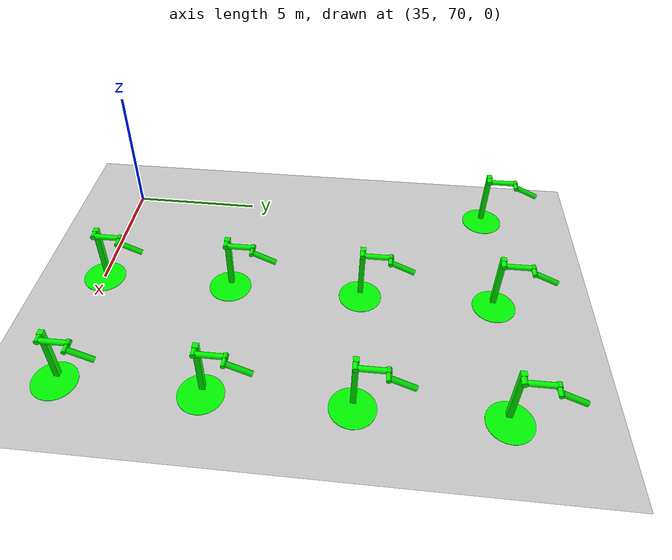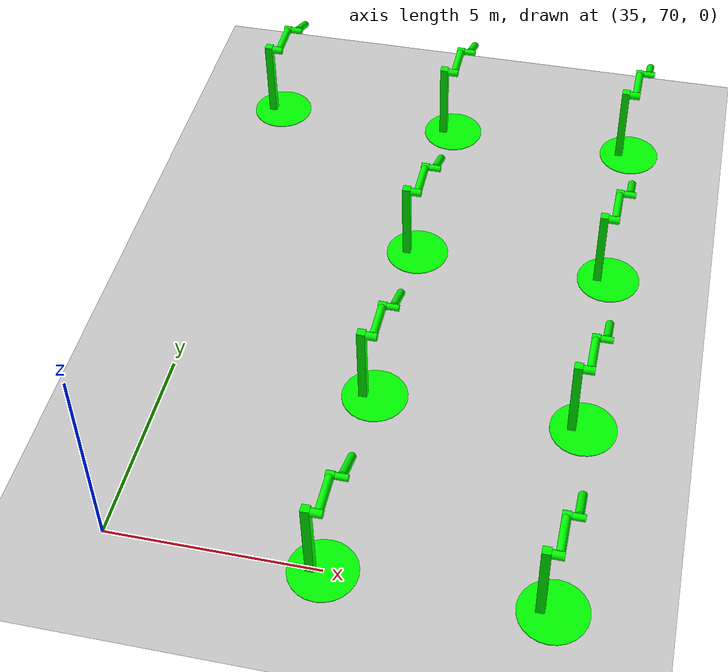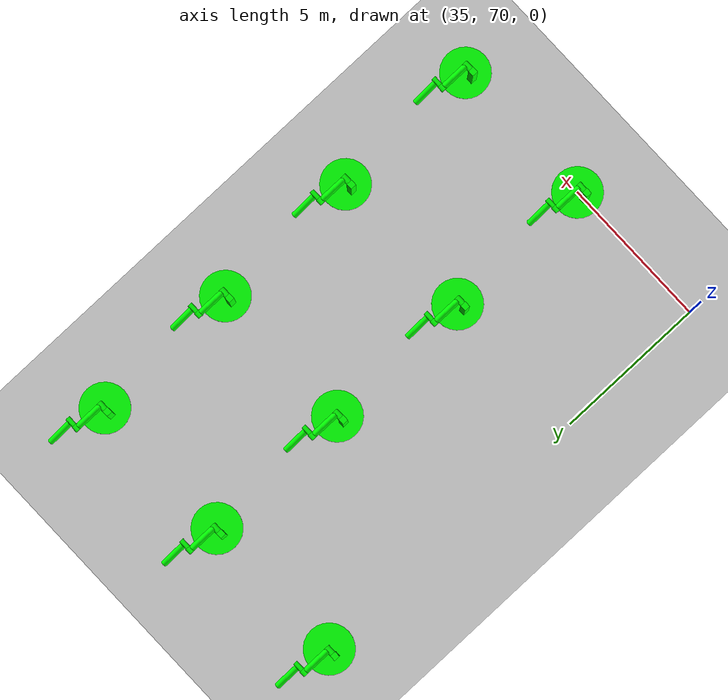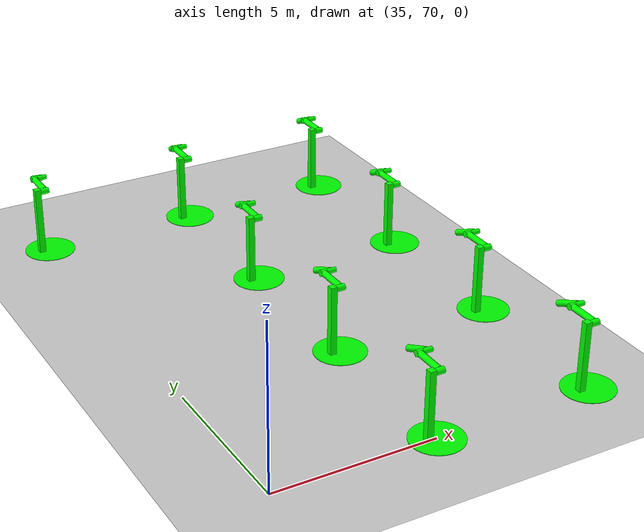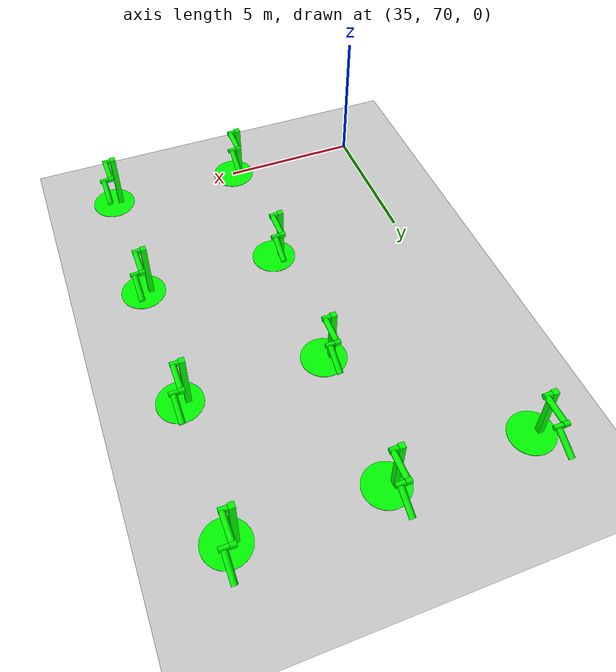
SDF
<sdf version="1.6">
 <world name="double_pendulums">
  <model name="ground_plane">
   <static>true</static>
   <link name="link">
    <collision name="collision">
     <geometry><plane><normal>0 0 1</normal><size>100 100</size></plane></geometry>
    </collision>
    <visual name="visual">
     <geometry><plane><normal>0 0 1</normal><size>100 100</size></plane></geometry>
     <material>
      <ambient>0.8 0.8 0.8 1</ambient>
      <diffuse>0.8 0.8 0.8 1</diffuse>
      <specular>0.8 0.8 0.8 1</specular>
     </material>
    </visual>
   </link>
  </model>
  <model name="dbl_pendulum_368">
   <pose>40 70 0 0 0 0</pose>
   <link name="base">
    <inertial><mass>100</mass></inertial>
    <visual name="vis_plate_on_ground">
     <pose>0 0 0.01 0 0 0</pose>
     <geometry><cylinder><radius>0.8</radius><length>0.02</length></cylinder></geometry>
     <material><ambient>0 1 0 1</ambient><diffuse>0 1 0 1</diffuse><specular>0 1 0 1</specular></material>
    </visual>
    <visual name="vis_pole">
     <pose>-0.275 0 1.1 0 0 0</pose>
     <geometry><box><size>0.2 0.2 2.2</size></box></geometry>
     <material><ambient>0 1 0 1</ambient><diffuse>0 1 0 1</diffuse><specular>0 1 0 1</specular></material>
    </visual>
    <collision name="col_plate_on_ground">
     <pose>0 0 0.01 0 0 0</pose>
     <geometry><cylinder><radius>0.8</radius><length>0.02</length></cylinder></geometry>
    </collision>
    <collision name="col_pole">
     <pose>-0.275 0 1.1 0 0 0</pose>
     <geometry><box><size>0.2 0.2 2.2</size></box></geometry>
    </collision>
   </link>
   <link name="upper_link">
    <pose>0 0 2.1 -1.5708 0 0</pose>
    <inertial><pose>0 0 0.5 0 0 0</pose></inertial>
    <visual name="vis_upper_joint">
     <pose>-0.05 0 0 0 1.5708 0</pose>
     <geometry><cylinder><radius>0.1</radius><length>0.3</length></cylinder></geometry>
     <material><ambient>0 1 0 1</ambient><diffuse>0 1 0 1</diffuse><specular>0 1 0 1</specular></material>
    </visual>
    <visual name="vis_lower_joint">
     <pose>0 0 1.0 0 1.5708 0</pose>
     <geometry><cylinder><radius>0.1</radius><length>0.2</length></cylinder></geometry>
     <material><ambient>0 1 0 1</ambient><diffuse>0 1 0 1</diffuse><specular>0 1 0 1</specular></material>
    </visual>
    <visual name="vis_cylinder">
     <pose>0 0 0.5 0 0 0</pose>
     <geometry><cylinder><radius>0.1</radius><length>0.9</length></cylinder></geometry>
     <material><ambient>0 1 0 1</ambient><diffuse>0 1 0 1</diffuse><specular>0 1 0 1</specular></material>
    </visual>
    <collision name="col_upper_joint">
     <pose>-0.05 0 0 0 1.5708 0</pose>
     <geometry><cylinder><radius>0.1</radius><length>0.3</length></cylinder></geometry>
    </collision>
    <collision name="col_lower_joint">
     <pose>0 0 1.0 0 1.5708 0</pose>
     <geometry><cylinder><radius>0.1</radius><length>0.2</length></cylinder></geometry>
    </collision>
    <collision name="col_cylinder">
     <pose>0 0 0.5 0 0 0</pose>
     <geometry><cylinder><radius>0.1</radius><length>0.9</length></cylinder></geometry>
    </collision>
   </link>
   <link name="lower_link">
    <pose>0.25 1.0 2.1 -2 0 0</pose>
    <inertial><pose>0 0 0.5 0 0 0</pose></inertial>
    <visual name="vis_lower_joint">
     <pose>0 0 0 0 1.5708 0</pose>
     <geometry><cylinder><radius>0.08</radius><length>0.3</length></cylinder></geometry>
     <material><ambient>0 1 0 1</ambient><diffuse>0 1 0 1</diffuse><specular>0 1 0 1</specular></material>
    </visual>
    <visual name="vis_cylinder">
     <pose>0 0 0.5 0 0 0</pose>
     <geometry><cylinder><radius>0.1</radius><length>0.9</length></cylinder></geometry>
     <material><ambient>0 1 0 1</ambient><diffuse>0 1 0 1</diffuse><specular>0 1 0 1</specular></material>
    </visual>
    <collision name="col_lower_joint">
     <pose>0 0 0 0 1.5708 0</pose>
     <geometry><cylinder><radius>0.08</radius><length>0.3</length></cylinder></geometry>
    </collision>
    <collision name="col_cylinder">
     <pose>0 0 0.5 0 0 0</pose>
     <geometry><cylinder><radius>0.1</radius><length>0.9</length></cylinder></geometry>
    </collision>
   </link>
   <joint name="upper_joint" type="revolute">
    <parent>base</parent>
    <child>upper_link</child>
    <axis><xyz>1.0 0 0</xyz></axis>
   </joint>
   <joint name="lower_joint" type="revolute">
    <parent>upper_link</parent>
    <child>lower_link</child>
    <axis><xyz>1.0 0 0</xyz></axis>
   </joint>
  </model>
  <model name="dbl_pendulum_369">
   <pose>45 70 0 0 0 0</pose>
   <link name="base">
    <inertial><mass>100</mass></inertial>
    <visual name="vis_plate_on_ground">
     <pose>0 0 0.01 0 0 0</pose>
     <geometry><cylinder><radius>0.8</radius><length>0.02</length></cylinder></geometry>
     <material><ambient>0 1 0 1</ambient><diffuse>0 1 0 1</diffuse><specular>0 1 0 1</specular></material>
    </visual>
    <visual name="vis_pole">
     <pose>-0.275 0 1.1 0 0 0</pose>
     <geometry><box><size>0.2 0.2 2.2</size></box></geometry>
     <material><ambient>0 1 0 1</ambient><diffuse>0 1 0 1</diffuse><specular>0 1 0 1</specular></material>
    </visual>
    <collision name="col_plate_on_ground">
     <pose>0 0 0.01 0 0 0</pose>
     <geometry><cylinder><radius>0.8</radius><length>0.02</length></cylinder></geometry>
    </collision>
    <collision name="col_pole">
     <pose>-0.275 0 1.1 0 0 0</pose>
     <geometry><box><size>0.2 0.2 2.2</size></box></geometry>
    </collision>
   </link>
   <link name="upper_link">
    <pose>0 0 2.1 -1.5708 0 0</pose>
    <inertial><pose>0 0 0.5 0 0 0</pose></inertial>
    <visual name="vis_upper_joint">
     <pose>-0.05 0 0 0 1.5708 0</pose>
     <geometry><cylinder><radius>0.1</radius><length>0.3</length></cylinder></geometry>
     <material><ambient>0 1 0 1</ambient><diffuse>0 1 0 1</diffuse><specular>0 1 0 1</specular></material>
    </visual>
    <visual name="vis_lower_joint">
     <pose>0 0 1.0 0 1.5708 0</pose>
     <geometry><cylinder><radius>0.1</radius><length>0.2</length></cylinder></geometry>
     <material><ambient>0 1 0 1</ambient><diffuse>0 1 0 1</diffuse><specular>0 1 0 1</specular></material>
    </visual>
    <visual name="vis_cylinder">
     <pose>0 0 0.5 0 0 0</pose>
     <geometry><cylinder><radius>0.1</radius><length>0.9</length></cylinder></geometry>
     <material><ambient>0 1 0 1</ambient><diffuse>0 1 0 1</diffuse><specular>0 1 0 1</specular></material>
    </visual>
    <collision name="col_upper_joint">
     <pose>-0.05 0 0 0 1.5708 0</pose>
     <geometry><cylinder><radius>0.1</radius><length>0.3</length></cylinder></geometry>
    </collision>
    <collision name="col_lower_joint">
     <pose>0 0 1.0 0 1.5708 0</pose>
     <geometry><cylinder><radius>0.1</radius><length>0.2</length></cylinder></geometry>
    </collision>
    <collision name="col_cylinder">
     <pose>0 0 0.5 0 0 0</pose>
     <geometry><cylinder><radius>0.1</radius><length>0.9</length></cylinder></geometry>
    </collision>
   </link>
   <link name="lower_link">
    <pose>0.25 1.0 2.1 -2 0 0</pose>
    <inertial><pose>0 0 0.5 0 0 0</pose></inertial>
    <visual name="vis_lower_joint">
     <pose>0 0 0 0 1.5708 0</pose>
     <geometry><cylinder><radius>0.08</radius><length>0.3</length></cylinder></geometry>
     <material><ambient>0 1 0 1</ambient><diffuse>0 1 0 1</diffuse><specular>0 1 0 1</specular></material>
    </visual>
    <visual name="vis_cylinder">
     <pose>0 0 0.5 0 0 0</pose>
     <geometry><cylinder><radius>0.1</radius><length>0.9</length></cylinder></geometry>
     <material><ambient>0 1 0 1</ambient><diffuse>0 1 0 1</diffuse><specular>0 1 0 1</specular></material>
    </visual>
    <collision name="col_lower_joint">
     <pose>0 0 0 0 1.5708 0</pose>
     <geometry><cylinder><radius>0.08</radius><length>0.3</length></cylinder></geometry>
    </collision>
    <collision name="col_cylinder">
     <pose>0 0 0.5 0 0 0</pose>
     <geometry><cylinder><radius>0.1</radius><length>0.9</length></cylinder></geometry>
    </collision>
   </link>
   <joint name="upper_joint" type="revolute">
    <parent>base</parent>
    <child>upper_link</child>
    <axis><xyz>1.0 0 0</xyz></axis>
   </joint>
   <joint name="lower_joint" type="revolute">
    <parent>upper_link</parent>
    <child>lower_link</child>
    <axis><xyz>1.0 0 0</xyz></axis>
   </joint>
  </model>
  <model name="dbl_pendulum_393">
   <pose>40 75 0 0 0 0</pose>
   <link name="base">
    <inertial><mass>100</mass></inertial>
    <visual name="vis_plate_on_ground">
     <pose>0 0 0.01 0 0 0</pose>
     <geometry><cylinder><radius>0.8</radius><length>0.02</length></cylinder></geometry>
     <material><ambient>0 1 0 1</ambient><diffuse>0 1 0 1</diffuse><specular>0 1 0 1</specular></material>
    </visual>
    <visual name="vis_pole">
     <pose>-0.275 0 1.1 0 0 0</pose>
     <geometry><box><size>0.2 0.2 2.2</size></box></geometry>
     <material><ambient>0 1 0 1</ambient><diffuse>0 1 0 1</diffuse><specular>0 1 0 1</specular></material>
    </visual>
    <collision name="col_plate_on_ground">
     <pose>0 0 0.01 0 0 0</pose>
     <geometry><cylinder><radius>0.8</radius><length>0.02</length></cylinder></geometry>
    </collision>
    <collision name="col_pole">
     <pose>-0.275 0 1.1 0 0 0</pose>
     <geometry><box><size>0.2 0.2 2.2</size></box></geometry>
    </collision>
   </link>
   <link name="upper_link">
    <pose>0 0 2.1 -1.5708 0 0</pose>
    <inertial><pose>0 0 0.5 0 0 0</pose></inertial>
    <visual name="vis_upper_joint">
     <pose>-0.05 0 0 0 1.5708 0</pose>
     <geometry><cylinder><radius>0.1</radius><length>0.3</length></cylinder></geometry>
     <material><ambient>0 1 0 1</ambient><diffuse>0 1 0 1</diffuse><specular>0 1 0 1</specular></material>
    </visual>
    <visual name="vis_lower_joint">
     <pose>0 0 1.0 0 1.5708 0</pose>
     <geometry><cylinder><radius>0.1</radius><length>0.2</length></cylinder></geometry>
     <material><ambient>0 1 0 1</ambient><diffuse>0 1 0 1</diffuse><specular>0 1 0 1</specular></material>
    </visual>
    <visual name="vis_cylinder">
     <pose>0 0 0.5 0 0 0</pose>
     <geometry><cylinder><radius>0.1</radius><length>0.9</length></cylinder></geometry>
     <material><ambient>0 1 0 1</ambient><diffuse>0 1 0 1</diffuse><specular>0 1 0 1</specular></material>
    </visual>
    <collision name="col_upper_joint">
     <pose>-0.05 0 0 0 1.5708 0</pose>
     <geometry><cylinder><radius>0.1</radius><length>0.3</length></cylinder></geometry>
    </collision>
    <collision name="col_lower_joint">
     <pose>0 0 1.0 0 1.5708 0</pose>
     <geometry><cylinder><radius>0.1</radius><length>0.2</length></cylinder></geometry>
    </collision>
    <collision name="col_cylinder">
     <pose>0 0 0.5 0 0 0</pose>
     <geometry><cylinder><radius>0.1</radius><length>0.9</length></cylinder></geometry>
    </collision>
   </link>
   <link name="lower_link">
    <pose>0.25 1.0 2.1 -2 0 0</pose>
    <inertial><pose>0 0 0.5 0 0 0</pose></inertial>
    <visual name="vis_lower_joint">
     <pose>0 0 0 0 1.5708 0</pose>
     <geometry><cylinder><radius>0.08</radius><length>0.3</length></cylinder></geometry>
     <material><ambient>0 1 0 1</ambient><diffuse>0 1 0 1</diffuse><specular>0 1 0 1</specular></material>
    </visual>
    <visual name="vis_cylinder">
     <pose>0 0 0.5 0 0 0</pose>
     <geometry><cylinder><radius>0.1</radius><length>0.9</length></cylinder></geometry>
     <material><ambient>0 1 0 1</ambient><diffuse>0 1 0 1</diffuse><specular>0 1 0 1</specular></material>
    </visual>
    <collision name="col_lower_joint">
     <pose>0 0 0 0 1.5708 0</pose>
     <geometry><cylinder><radius>0.08</radius><length>0.3</length></cylinder></geometry>
    </collision>
    <collision name="col_cylinder">
     <pose>0 0 0.5 0 0 0</pose>
     <geometry><cylinder><radius>0.1</radius><length>0.9</length></cylinder></geometry>
    </collision>
   </link>
   <joint name="upper_joint" type="revolute">
    <parent>base</parent>
    <child>upper_link</child>
    <axis><xyz>1.0 0 0</xyz></axis>
   </joint>
   <joint name="lower_joint" type="revolute">
    <parent>upper_link</parent>
    <child>lower_link</child>
    <axis><xyz>1.0 0 0</xyz></axis>
   </joint>
  </model>
  <model name="dbl_pendulum_394">
   <pose>45 75 0 0 0 0</pose>
   <link name="base">
    <inertial><mass>100</mass></inertial>
    <visual name="vis_plate_on_ground">
     <pose>0 0 0.01 0 0 0</pose>
     <geometry><cylinder><radius>0.8</radius><length>0.02</length></cylinder></geometry>
     <material><ambient>0 1 0 1</ambient><diffuse>0 1 0 1</diffuse><specular>0 1 0 1</specular></material>
    </visual>
    <visual name="vis_pole">
     <pose>-0.275 0 1.1 0 0 0</pose>
     <geometry><box><size>0.2 0.2 2.2</size></box></geometry>
     <material><ambient>0 1 0 1</ambient><diffuse>0 1 0 1</diffuse><specular>0 1 0 1</specular></material>
    </visual>
    <collision name="col_plate_on_ground">
     <pose>0 0 0.01 0 0 0</pose>
     <geometry><cylinder><radius>0.8</radius><length>0.02</length></cylinder></geometry>
    </collision>
    <collision name="col_pole">
     <pose>-0.275 0 1.1 0 0 0</pose>
     <geometry><box><size>0.2 0.2 2.2</size></box></geometry>
    </collision>
   </link>
   <link name="upper_link">
    <pose>0 0 2.1 -1.5708 0 0</pose>
    <inertial><pose>0 0 0.5 0 0 0</pose></inertial>
    <visual name="vis_upper_joint">
     <pose>-0.05 0 0 0 1.5708 0</pose>
     <geometry><cylinder><radius>0.1</radius><length>0.3</length></cylinder></geometry>
     <material><ambient>0 1 0 1</ambient><diffuse>0 1 0 1</diffuse><specular>0 1 0 1</specular></material>
    </visual>
    <visual name="vis_lower_joint">
     <pose>0 0 1.0 0 1.5708 0</pose>
     <geometry><cylinder><radius>0.1</radius><length>0.2</length></cylinder></geometry>
     <material><ambient>0 1 0 1</ambient><diffuse>0 1 0 1</diffuse><specular>0 1 0 1</specular></material>
    </visual>
    <visual name="vis_cylinder">
     <pose>0 0 0.5 0 0 0</pose>
     <geometry><cylinder><radius>0.1</radius><length>0.9</length></cylinder></geometry>
     <material><ambient>0 1 0 1</ambient><diffuse>0 1 0 1</diffuse><specular>0 1 0 1</specular></material>
    </visual>
    <collision name="col_upper_joint">
     <pose>-0.05 0 0 0 1.5708 0</pose>
     <geometry><cylinder><radius>0.1</radius><length>0.3</length></cylinder></geometry>
    </collision>
    <collision name="col_lower_joint">
     <pose>0 0 1.0 0 1.5708 0</pose>
     <geometry><cylinder><radius>0.1</radius><length>0.2</length></cylinder></geometry>
    </collision>
    <collision name="col_cylinder">
     <pose>0 0 0.5 0 0 0</pose>
     <geometry><cylinder><radius>0.1</radius><length>0.9</length></cylinder></geometry>
    </collision>
   </link>
   <link name="lower_link">
    <pose>0.25 1.0 2.1 -2 0 0</pose>
    <inertial><pose>0 0 0.5 0 0 0</pose></inertial>
    <visual name="vis_lower_joint">
     <pose>0 0 0 0 1.5708 0</pose>
     <geometry><cylinder><radius>0.08</radius><length>0.3</length></cylinder></geometry>
     <material><ambient>0 1 0 1</ambient><diffuse>0 1 0 1</diffuse><specular>0 1 0 1</specular></material>
    </visual>
    <visual name="vis_cylinder">
     <pose>0 0 0.5 0 0 0</pose>
     <geometry><cylinder><radius>0.1</radius><length>0.9</length></cylinder></geometry>
     <material><ambient>0 1 0 1</ambient><diffuse>0 1 0 1</diffuse><specular>0 1 0 1</specular></material>
    </visual>
    <collision name="col_lower_joint">
     <pose>0 0 0 0 1.5708 0</pose>
     <geometry><cylinder><radius>0.08</radius><length>0.3</length></cylinder></geometry>
    </collision>
    <collision name="col_cylinder">
     <pose>0 0 0.5 0 0 0</pose>
     <geometry><cylinder><radius>0.1</radius><length>0.9</length></cylinder></geometry>
    </collision>
   </link>
   <joint name="upper_joint" type="revolute">
    <parent>base</parent>
    <child>upper_link</child>
    <axis><xyz>1.0 0 0</xyz></axis>
   </joint>
   <joint name="lower_joint" type="revolute">
    <parent>upper_link</parent>
    <child>lower_link</child>
    <axis><xyz>1.0 0 0</xyz></axis>
   </joint>
  </model>
  <model name="dbl_pendulum_418">
   <pose>40 80 0 0 0 0</pose>
   <link name="base">
    <inertial><mass>100</mass></inertial>
    <visual name="vis_plate_on_ground">
     <pose>0 0 0.01 0 0 0</pose>
     <geometry><cylinder><radius>0.8</radius><length>0.02</length></cylinder></geometry>
     <material><ambient>0 1 0 1</ambient><diffuse>0 1 0 1</diffuse><specular>0 1 0 1</specular></material>
    </visual>
    <visual name="vis_pole">
     <pose>-0.275 0 1.1 0 0 0</pose>
     <geometry><box><size>0.2 0.2 2.2</size></box></geometry>
     <material><ambient>0 1 0 1</ambient><diffuse>0 1 0 1</diffuse><specular>0 1 0 1</specular></material>
    </visual>
    <collision name="col_plate_on_ground">
     <pose>0 0 0.01 0 0 0</pose>
     <geometry><cylinder><radius>0.8</radius><length>0.02</length></cylinder></geometry>
    </collision>
    <collision name="col_pole">
     <pose>-0.275 0 1.1 0 0 0</pose>
     <geometry><box><size>0.2 0.2 2.2</size></box></geometry>
    </collision>
   </link>
   <link name="upper_link">
    <pose>0 0 2.1 -1.5708 0 0</pose>
    <inertial><pose>0 0 0.5 0 0 0</pose></inertial>
    <visual name="vis_upper_joint">
     <pose>-0.05 0 0 0 1.5708 0</pose>
     <geometry><cylinder><radius>0.1</radius><length>0.3</length></cylinder></geometry>
     <material><ambient>0 1 0 1</ambient><diffuse>0 1 0 1</diffuse><specular>0 1 0 1</specular></material>
    </visual>
    <visual name="vis_lower_joint">
     <pose>0 0 1.0 0 1.5708 0</pose>
     <geometry><cylinder><radius>0.1</radius><length>0.2</length></cylinder></geometry>
     <material><ambient>0 1 0 1</ambient><diffuse>0 1 0 1</diffuse><specular>0 1 0 1</specular></material>
    </visual>
    <visual name="vis_cylinder">
     <pose>0 0 0.5 0 0 0</pose>
     <geometry><cylinder><radius>0.1</radius><length>0.9</length></cylinder></geometry>
     <material><ambient>0 1 0 1</ambient><diffuse>0 1 0 1</diffuse><specular>0 1 0 1</specular></material>
    </visual>
    <collision name="col_upper_joint">
     <pose>-0.05 0 0 0 1.5708 0</pose>
     <geometry><cylinder><radius>0.1</radius><length>0.3</length></cylinder></geometry>
    </collision>
    <collision name="col_lower_joint">
     <pose>0 0 1.0 0 1.5708 0</pose>
     <geometry><cylinder><radius>0.1</radius><length>0.2</length></cylinder></geometry>
    </collision>
    <collision name="col_cylinder">
     <pose>0 0 0.5 0 0 0</pose>
     <geometry><cylinder><radius>0.1</radius><length>0.9</length></cylinder></geometry>
    </collision>
   </link>
   <link name="lower_link">
    <pose>0.25 1.0 2.1 -2 0 0</pose>
    <inertial><pose>0 0 0.5 0 0 0</pose></inertial>
    <visual name="vis_lower_joint">
     <pose>0 0 0 0 1.5708 0</pose>
     <geometry><cylinder><radius>0.08</radius><length>0.3</length></cylinder></geometry>
     <material><ambient>0 1 0 1</ambient><diffuse>0 1 0 1</diffuse><specular>0 1 0 1</specular></material>
    </visual>
    <visual name="vis_cylinder">
     <pose>0 0 0.5 0 0 0</pose>
     <geometry><cylinder><radius>0.1</radius><length>0.9</length></cylinder></geometry>
     <material><ambient>0 1 0 1</ambient><diffuse>0 1 0 1</diffuse><specular>0 1 0 1</specular></material>
    </visual>
    <collision name="col_lower_joint">
     <pose>0 0 0 0 1.5708 0</pose>
     <geometry><cylinder><radius>0.08</radius><length>0.3</length></cylinder></geometry>
    </collision>
    <collision name="col_cylinder">
     <pose>0 0 0.5 0 0 0</pose>
     <geometry><cylinder><radius>0.1</radius><length>0.9</length></cylinder></geometry>
    </collision>
   </link>
   <joint name="upper_joint" type="revolute">
    <parent>base</parent>
    <child>upper_link</child>
    <axis><xyz>1.0 0 0</xyz></axis>
   </joint>
   <joint name="lower_joint" type="revolute">
    <parent>upper_link</parent>
    <child>lower_link</child>
    <axis><xyz>1.0 0 0</xyz></axis>
   </joint>
  </model>
  <model name="dbl_pendulum_419">
   <pose>45 80 0 0 0 0</pose>
   <link name="base">
    <inertial><mass>100</mass></inertial>
    <visual name="vis_plate_on_ground">
     <pose>0 0 0.01 0 0 0</pose>
     <geometry><cylinder><radius>0.8</radius><length>0.02</length></cylinder></geometry>
     <material><ambient>0 1 0 1</ambient><diffuse>0 1 0 1</diffuse><specular>0 1 0 1</specular></material>
    </visual>
    <visual name="vis_pole">
     <pose>-0.275 0 1.1 0 0 0</pose>
     <geometry><box><size>0.2 0.2 2.2</size></box></geometry>
     <material><ambient>0 1 0 1</ambient><diffuse>0 1 0 1</diffuse><specular>0 1 0 1</specular></material>
    </visual>
    <collision name="col_plate_on_ground">
     <pose>0 0 0.01 0 0 0</pose>
     <geometry><cylinder><radius>0.8</radius><length>0.02</length></cylinder></geometry>
    </collision>
    <collision name="col_pole">
     <pose>-0.275 0 1.1 0 0 0</pose>
     <geometry><box><size>0.2 0.2 2.2</size></box></geometry>
    </collision>
   </link>
   <link name="upper_link">
    <pose>0 0 2.1 -1.5708 0 0</pose>
    <inertial><pose>0 0 0.5 0 0 0</pose></inertial>
    <visual name="vis_upper_joint">
     <pose>-0.05 0 0 0 1.5708 0</pose>
     <geometry><cylinder><radius>0.1</radius><length>0.3</length></cylinder></geometry>
     <material><ambient>0 1 0 1</ambient><diffuse>0 1 0 1</diffuse><specular>0 1 0 1</specular></material>
    </visual>
    <visual name="vis_lower_joint">
     <pose>0 0 1.0 0 1.5708 0</pose>
     <geometry><cylinder><radius>0.1</radius><length>0.2</length></cylinder></geometry>
     <material><ambient>0 1 0 1</ambient><diffuse>0 1 0 1</diffuse><specular>0 1 0 1</specular></material>
    </visual>
    <visual name="vis_cylinder">
     <pose>0 0 0.5 0 0 0</pose>
     <geometry><cylinder><radius>0.1</radius><length>0.9</length></cylinder></geometry>
     <material><ambient>0 1 0 1</ambient><diffuse>0 1 0 1</diffuse><specular>0 1 0 1</specular></material>
    </visual>
    <collision name="col_upper_joint">
     <pose>-0.05 0 0 0 1.5708 0</pose>
     <geometry><cylinder><radius>0.1</radius><length>0.3</length></cylinder></geometry>
    </collision>
    <collision name="col_lower_joint">
     <pose>0 0 1.0 0 1.5708 0</pose>
     <geometry><cylinder><radius>0.1</radius><length>0.2</length></cylinder></geometry>
    </collision>
    <collision name="col_cylinder">
     <pose>0 0 0.5 0 0 0</pose>
     <geometry><cylinder><radius>0.1</radius><length>0.9</length></cylinder></geometry>
    </collision>
   </link>
   <link name="lower_link">
    <pose>0.25 1.0 2.1 -2 0 0</pose>
    <inertial><pose>0 0 0.5 0 0 0</pose></inertial>
    <visual name="vis_lower_joint">
     <pose>0 0 0 0 1.5708 0</pose>
     <geometry><cylinder><radius>0.08</radius><length>0.3</length></cylinder></geometry>
     <material><ambient>0 1 0 1</ambient><diffuse>0 1 0 1</diffuse><specular>0 1 0 1</specular></material>
    </visual>
    <visual name="vis_cylinder">
     <pose>0 0 0.5 0 0 0</pose>
     <geometry><cylinder><radius>0.1</radius><length>0.9</length></cylinder></geometry>
     <material><ambient>0 1 0 1</ambient><diffuse>0 1 0 1</diffuse><specular>0 1 0 1</specular></material>
    </visual>
    <collision name="col_lower_joint">
     <pose>0 0 0 0 1.5708 0</pose>
     <geometry><cylinder><radius>0.08</radius><length>0.3</length></cylinder></geometry>
    </collision>
    <collision name="col_cylinder">
     <pose>0 0 0.5 0 0 0</pose>
     <geometry><cylinder><radius>0.1</radius><length>0.9</length></cylinder></geometry>
    </collision>
   </link>
   <joint name="upper_joint" type="revolute">
    <parent>base</parent>
    <child>upper_link</child>
    <axis><xyz>1.0 0 0</xyz></axis>
   </joint>
   <joint name="lower_joint" type="revolute">
    <parent>upper_link</parent>
    <child>lower_link</child>
    <axis><xyz>1.0 0 0</xyz></axis>
   </joint>
  </model>
  <model name="dbl_pendulum_442">
   <pose>35 85 0 0 0 0</pose>
   <link name="base">
    <inertial><mass>100</mass></inertial>
    <visual name="vis_plate_on_ground">
     <pose>0 0 0.01 0 0 0</pose>
     <geometry><cylinder><radius>0.8</radius><length>0.02</length></cylinder></geometry>
     <material><ambient>0 1 0 1</ambient><diffuse>0 1 0 1</diffuse><specular>0 1 0 1</specular></material>
    </visual>
    <visual name="vis_pole">
     <pose>-0.275 0 1.1 0 0 0</pose>
     <geometry><box><size>0.2 0.2 2.2</size></box></geometry>
     <material><ambient>0 1 0 1</ambient><diffuse>0 1 0 1</diffuse><specular>0 1 0 1</specular></material>
    </visual>
    <collision name="col_plate_on_ground">
     <pose>0 0 0.01 0 0 0</pose>
     <geometry><cylinder><radius>0.8</radius><length>0.02</length></cylinder></geometry>
    </collision>
    <collision name="col_pole">
     <pose>-0.275 0 1.1 0 0 0</pose>
     <geometry><box><size>0.2 0.2 2.2</size></box></geometry>
    </collision>
   </link>
   <link name="upper_link">
    <pose>0 0 2.1 -1.5708 0 0</pose>
    <inertial><pose>0 0 0.5 0 0 0</pose></inertial>
    <visual name="vis_upper_joint">
     <pose>-0.05 0 0 0 1.5708 0</pose>
     <geometry><cylinder><radius>0.1</radius><length>0.3</length></cylinder></geometry>
     <material><ambient>0 1 0 1</ambient><diffuse>0 1 0 1</diffuse><specular>0 1 0 1</specular></material>
    </visual>
    <visual name="vis_lower_joint">
     <pose>0 0 1.0 0 1.5708 0</pose>
     <geometry><cylinder><radius>0.1</radius><length>0.2</length></cylinder></geometry>
     <material><ambient>0 1 0 1</ambient><diffuse>0 1 0 1</diffuse><specular>0 1 0 1</specular></material>
    </visual>
    <visual name="vis_cylinder">
     <pose>0 0 0.5 0 0 0</pose>
     <geometry><cylinder><radius>0.1</radius><length>0.9</length></cylinder></geometry>
     <material><ambient>0 1 0 1</ambient><diffuse>0 1 0 1</diffuse><specular>0 1 0 1</specular></material>
    </visual>
    <collision name="col_upper_joint">
     <pose>-0.05 0 0 0 1.5708 0</pose>
     <geometry><cylinder><radius>0.1</radius><length>0.3</length></cylinder></geometry>
    </collision>
    <collision name="col_lower_joint">
     <pose>0 0 1.0 0 1.5708 0</pose>
     <geometry><cylinder><radius>0.1</radius><length>0.2</length></cylinder></geometry>
    </collision>
    <collision name="col_cylinder">
     <pose>0 0 0.5 0 0 0</pose>
     <geometry><cylinder><radius>0.1</radius><length>0.9</length></cylinder></geometry>
    </collision>
   </link>
   <link name="lower_link">
    <pose>0.25 1.0 2.1 -2 0 0</pose>
    <inertial><pose>0 0 0.5 0 0 0</pose></inertial>
    <visual name="vis_lower_joint">
     <pose>0 0 0 0 1.5708 0</pose>
     <geometry><cylinder><radius>0.08</radius><length>0.3</length></cylinder></geometry>
     <material><ambient>0 1 0 1</ambient><diffuse>0 1 0 1</diffuse><specular>0 1 0 1</specular></material>
    </visual>
    <visual name="vis_cylinder">
     <pose>0 0 0.5 0 0 0</pose>
     <geometry><cylinder><radius>0.1</radius><length>0.9</length></cylinder></geometry>
     <material><ambient>0 1 0 1</ambient><diffuse>0 1 0 1</diffuse><specular>0 1 0 1</specular></material>
    </visual>
    <collision name="col_lower_joint">
     <pose>0 0 0 0 1.5708 0</pose>
     <geometry><cylinder><radius>0.08</radius><length>0.3</length></cylinder></geometry>
    </collision>
    <collision name="col_cylinder">
     <pose>0 0 0.5 0 0 0</pose>
     <geometry><cylinder><radius>0.1</radius><length>0.9</length></cylinder></geometry>
    </collision>
   </link>
   <joint name="upper_joint" type="revolute">
    <parent>base</parent>
    <child>upper_link</child>
    <axis><xyz>1.0 0 0</xyz></axis>
   </joint>
   <joint name="lower_joint" type="revolute">
    <parent>upper_link</parent>
    <child>lower_link</child>
    <axis><xyz>1.0 0 0</xyz></axis>
   </joint>
  </model>
  <model name="dbl_pendulum_443">
   <pose>40 85 0 0 0 0</pose>
   <link name="base">
    <inertial><mass>100</mass></inertial>
    <visual name="vis_plate_on_ground">
     <pose>0 0 0.01 0 0 0</pose>
     <geometry><cylinder><radius>0.8</radius><length>0.02</length></cylinder></geometry>
     <material><ambient>0 1 0 1</ambient><diffuse>0 1 0 1</diffuse><specular>0 1 0 1</specular></material>
    </visual>
    <visual name="vis_pole">
     <pose>-0.275 0 1.1 0 0 0</pose>
     <geometry><box><size>0.2 0.2 2.2</size></box></geometry>
     <material><ambient>0 1 0 1</ambient><diffuse>0 1 0 1</diffuse><specular>0 1 0 1</specular></material>
    </visual>
    <collision name="col_plate_on_ground">
     <pose>0 0 0.01 0 0 0</pose>
     <geometry><cylinder><radius>0.8</radius><length>0.02</length></cylinder></geometry>
    </collision>
    <collision name="col_pole">
     <pose>-0.275 0 1.1 0 0 0</pose>
     <geometry><box><size>0.2 0.2 2.2</size></box></geometry>
    </collision>
   </link>
   <link name="upper_link">
    <pose>0 0 2.1 -1.5708 0 0</pose>
    <inertial><pose>0 0 0.5 0 0 0</pose></inertial>
    <visual name="vis_upper_joint">
     <pose>-0.05 0 0 0 1.5708 0</pose>
     <geometry><cylinder><radius>0.1</radius><length>0.3</length></cylinder></geometry>
     <material><ambient>0 1 0 1</ambient><diffuse>0 1 0 1</diffuse><specular>0 1 0 1</specular></material>
    </visual>
    <visual name="vis_lower_joint">
     <pose>0 0 1.0 0 1.5708 0</pose>
     <geometry><cylinder><radius>0.1</radius><length>0.2</length></cylinder></geometry>
     <material><ambient>0 1 0 1</ambient><diffuse>0 1 0 1</diffuse><specular>0 1 0 1</specular></material>
    </visual>
    <visual name="vis_cylinder">
     <pose>0 0 0.5 0 0 0</pose>
     <geometry><cylinder><radius>0.1</radius><length>0.9</length></cylinder></geometry>
     <material><ambient>0 1 0 1</ambient><diffuse>0 1 0 1</diffuse><specular>0 1 0 1</specular></material>
    </visual>
    <collision name="col_upper_joint">
     <pose>-0.05 0 0 0 1.5708 0</pose>
     <geometry><cylinder><radius>0.1</radius><length>0.3</length></cylinder></geometry>
    </collision>
    <collision name="col_lower_joint">
     <pose>0 0 1.0 0 1.5708 0</pose>
     <geometry><cylinder><radius>0.1</radius><length>0.2</length></cylinder></geometry>
    </collision>
    <collision name="col_cylinder">
     <pose>0 0 0.5 0 0 0</pose>
     <geometry><cylinder><radius>0.1</radius><length>0.9</length></cylinder></geometry>
    </collision>
   </link>
   <link name="lower_link">
    <pose>0.25 1.0 2.1 -2 0 0</pose>
    <inertial><pose>0 0 0.5 0 0 0</pose></inertial>
    <visual name="vis_lower_joint">
     <pose>0 0 0 0 1.5708 0</pose>
     <geometry><cylinder><radius>0.08</radius><length>0.3</length></cylinder></geometry>
     <material><ambient>0 1 0 1</ambient><diffuse>0 1 0 1</diffuse><specular>0 1 0 1</specular></material>
    </visual>
    <visual name="vis_cylinder">
     <pose>0 0 0.5 0 0 0</pose>
     <geometry><cylinder><radius>0.1</radius><length>0.9</length></cylinder></geometry>
     <material><ambient>0 1 0 1</ambient><diffuse>0 1 0 1</diffuse><specular>0 1 0 1</specular></material>
    </visual>
    <collision name="col_lower_joint">
     <pose>0 0 0 0 1.5708 0</pose>
     <geometry><cylinder><radius>0.08</radius><length>0.3</length></cylinder></geometry>
    </collision>
    <collision name="col_cylinder">
     <pose>0 0 0.5 0 0 0</pose>
     <geometry><cylinder><radius>0.1</radius><length>0.9</length></cylinder></geometry>
    </collision>
   </link>
   <joint name="upper_joint" type="revolute">
    <parent>base</parent>
    <child>upper_link</child>
    <axis><xyz>1.0 0 0</xyz></axis>
   </joint>
   <joint name="lower_joint" type="revolute">
    <parent>upper_link</parent>
    <child>lower_link</child>
    <axis><xyz>1.0 0 0</xyz></axis>
   </joint>
  </model>
  <model name="dbl_pendulum_444">
   <pose>45 85 0 0 0 0</pose>
   <link name="base">
    <inertial><mass>100</mass></inertial>
    <visual name="vis_plate_on_ground">
     <pose>0 0 0.01 0 0 0</pose>
     <geometry><cylinder><radius>0.8</radius><length>0.02</length></cylinder></geometry>
     <material><ambient>0 1 0 1</ambient><diffuse>0 1 0 1</diffuse><specular>0 1 0 1</specular></material>
    </visual>
    <visual name="vis_pole">
     <pose>-0.275 0 1.1 0 0 0</pose>
     <geometry><box><size>0.2 0.2 2.2</size></box></geometry>
     <material><ambient>0 1 0 1</ambient><diffuse>0 1 0 1</diffuse><specular>0 1 0 1</specular></material>
    </visual>
    <collision name="col_plate_on_ground">
     <pose>0 0 0.01 0 0 0</pose>
     <geometry><cylinder><radius>0.8</radius><length>0.02</length></cylinder></geometry>
    </collision>
    <collision name="col_pole">
     <pose>-0.275 0 1.1 0 0 0</pose>
     <geometry><box><size>0.2 0.2 2.2</size></box></geometry>
    </collision>
   </link>
   <link name="upper_link">
    <pose>0 0 2.1 -1.5708 0 0</pose>
    <inertial><pose>0 0 0.5 0 0 0</pose></inertial>
    <visual name="vis_upper_joint">
     <pose>-0.05 0 0 0 1.5708 0</pose>
     <geometry><cylinder><radius>0.1</radius><length>0.3</length></cylinder></geometry>
     <material><ambient>0 1 0 1</ambient><diffuse>0 1 0 1</diffuse><specular>0 1 0 1</specular></material>
    </visual>
    <visual name="vis_lower_joint">
     <pose>0 0 1.0 0 1.5708 0</pose>
     <geometry><cylinder><radius>0.1</radius><length>0.2</length></cylinder></geometry>
     <material><ambient>0 1 0 1</ambient><diffuse>0 1 0 1</diffuse><specular>0 1 0 1</specular></material>
    </visual>
    <visual name="vis_cylinder">
     <pose>0 0 0.5 0 0 0</pose>
     <geometry><cylinder><radius>0.1</radius><length>0.9</length></cylinder></geometry>
     <material><ambient>0 1 0 1</ambient><diffuse>0 1 0 1</diffuse><specular>0 1 0 1</specular></material>
    </visual>
    <collision name="col_upper_joint">
     <pose>-0.05 0 0 0 1.5708 0</pose>
     <geometry><cylinder><radius>0.1</radius><length>0.3</length></cylinder></geometry>
    </collision>
    <collision name="col_lower_joint">
     <pose>0 0 1.0 0 1.5708 0</pose>
     <geometry><cylinder><radius>0.1</radius><length>0.2</length></cylinder></geometry>
    </collision>
    <collision name="col_cylinder">
     <pose>0 0 0.5 0 0 0</pose>
     <geometry><cylinder><radius>0.1</radius><length>0.9</length></cylinder></geometry>
    </collision>
   </link>
   <link name="lower_link">
    <pose>0.25 1.0 2.1 -2 0 0</pose>
    <inertial><pose>0 0 0.5 0 0 0</pose></inertial>
    <visual name="vis_lower_joint">
     <pose>0 0 0 0 1.5708 0</pose>
     <geometry><cylinder><radius>0.08</radius><length>0.3</length></cylinder></geometry>
     <material><ambient>0 1 0 1</ambient><diffuse>0 1 0 1</diffuse><specular>0 1 0 1</specular></material>
    </visual>
    <visual name="vis_cylinder">
     <pose>0 0 0.5 0 0 0</pose>
     <geometry><cylinder><radius>0.1</radius><length>0.9</length></cylinder></geometry>
     <material><ambient>0 1 0 1</ambient><diffuse>0 1 0 1</diffuse><specular>0 1 0 1</specular></material>
    </visual>
    <collision name="col_lower_joint">
     <pose>0 0 0 0 1.5708 0</pose>
     <geometry><cylinder><radius>0.08</radius><length>0.3</length></cylinder></geometry>
    </collision>
    <collision name="col_cylinder">
     <pose>0 0 0.5 0 0 0</pose>
     <geometry><cylinder><radius>0.1</radius><length>0.9</length></cylinder></geometry>
    </collision>
   </link>
   <joint name="upper_joint" type="revolute">
    <parent>base</parent>
    <child>upper_link</child>
    <axis><xyz>1.0 0 0</xyz></axis>
   </joint>
   <joint name="lower_joint" type="revolute">
    <parent>upper_link</parent>
    <child>lower_link</child>
    <axis><xyz>1.0 0 0</xyz></axis>
   </joint>
  </model>
 </world>
</sdf>
